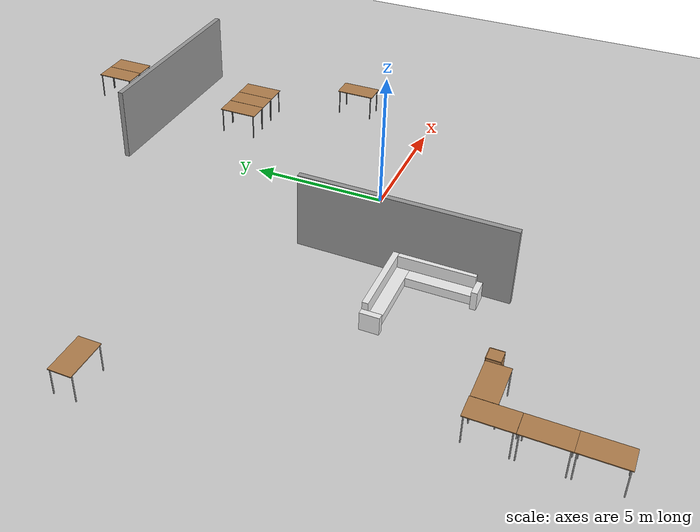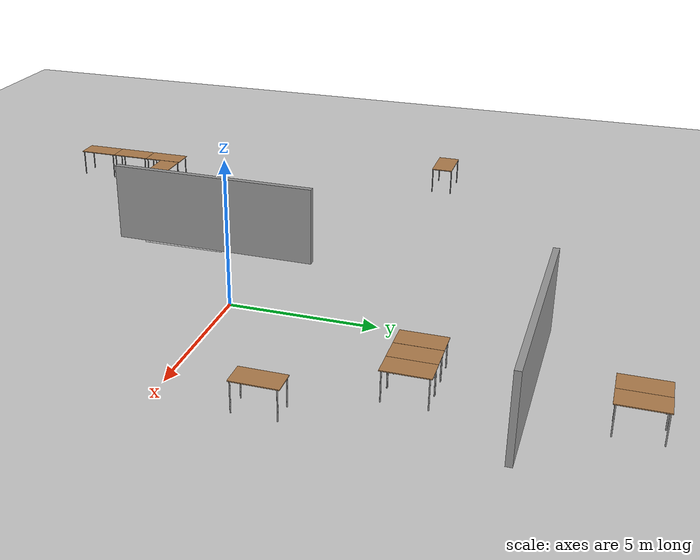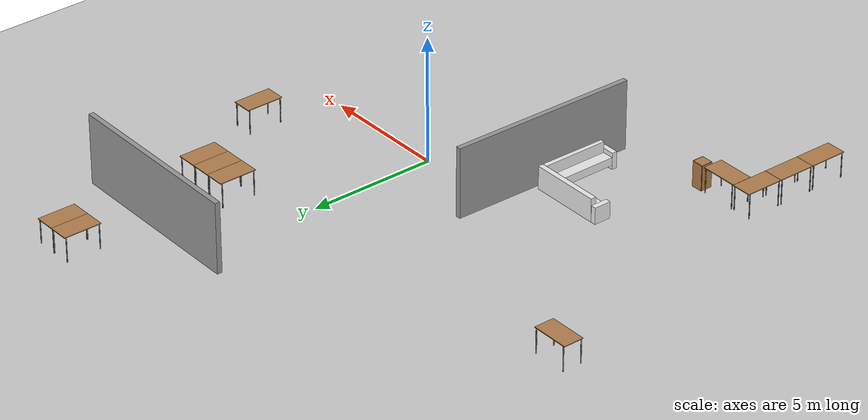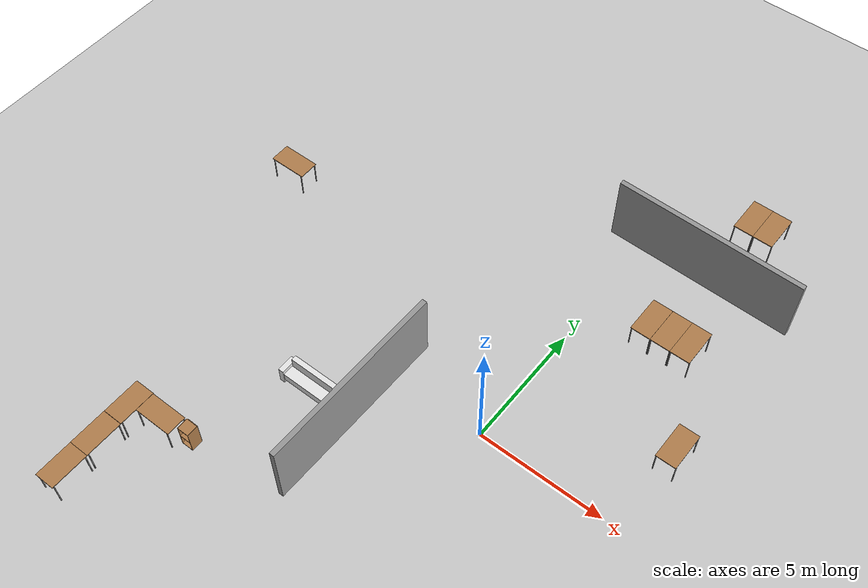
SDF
<sdf version="1.6">
 <world name="default">
  <light name="sun" type="directional">
   <pose>0 0 10 0 -0 0</pose>
   <diffuse>0.8 0.8 0.8 1</diffuse>
   <specular>0.2 0.2 0.2 1</specular>
   <attenuation>
    <range>1000</range>
    <constant>0.9</constant>
    <linear>0.01</linear>
    <quadratic>0.001</quadratic>
   </attenuation>
   <direction>-0.5 0.1 -0.9</direction>
  </light>
  <model name="ground_plane">
   <static>1</static>
   <link name="link">
    <collision name="collision">
     <geometry><plane><normal>0 0 1</normal><size>100 100</size></plane></geometry>
     <surface>
      <contact><collide_bitmask>65535</collide_bitmask></contact>
      <friction><ode><mu>100</mu><mu2>50</mu2></ode></friction>
     </surface>
    </collision>
    <visual name="visual">
     <cast_shadows>0</cast_shadows>
     <geometry><plane><normal>0 0 1</normal><size>100 100</size></plane></geometry>
     <material>
      <script><uri>file://media/materials/scripts/gazebo.material</uri><name>Gazebo/Grey</name></script>
     </material>
    </visual>
   </link>
  </model>
  <gravity>0 0 -9.8</gravity>
  <magnetic_field>6e-06 2.3e-05 -4.2e-05</magnetic_field>
  <atmosphere type="adiabatic"/>
  <physics name="default_physics" default="0" type="ode">
   <max_step_size>0.001</max_step_size>
   <real_time_factor>1</real_time_factor>
   <real_time_update_rate>1000</real_time_update_rate>
  </physics>
  <scene><ambient>0.4 0.4 0.4 1</ambient><background>0.7 0.7 0.7 1</background><shadows>1</shadows></scene>
  <audio><device>default</device></audio>
  <spherical_coordinates>
   <surface_model>EARTH_WGS84</surface_model>
   <latitude_deg>0</latitude_deg>
   <longitude_deg>0</longitude_deg>
   <elevation>0</elevation>
   <heading_deg>0</heading_deg>
  </spherical_coordinates>
  <model name="grey_wall">
   <static>1</static>
   <link name="link">
    <pose>0 0 1.4 0 -0 0</pose>
    <collision name="collision"><geometry><box><size>7.5 0.2 2.8</size></box></geometry></collision>
    <visual name="visual">
     <cast_shadows>0</cast_shadows>
     <geometry><box><size>7.5 0.2 2.8</size></box></geometry>
     <material>
      <script>
       <uri>model://grey_wall/materials/scripts</uri>
       <uri>model://grey_wall/materials/textures</uri>
       <name>vrc/grey_wall</name>
      </script>
     </material>
    </visual>
   </link>
   <pose>-3.71294 -2.12514 0.10462 0 -0 1.55928</pose>
  </model>
  <model name="table">
   <static>1</static>
   <link name="link">
    <collision name="surface">
     <pose>0 0 1 0 -0 0</pose>
     <geometry><box><size>1.5 0.8 0.03</size></box></geometry>
     <surface><friction><ode><mu>0.6</mu><mu2>0.6</mu2></ode></friction></surface>
    </collision>
    <visual name="visual1">
     <pose>0 0 1 0 -0 0</pose>
     <geometry><box><size>1.5 0.8 0.03</size></box></geometry>
     <material>
      <script><uri>file://media/materials/scripts/gazebo.material</uri><name>Gazebo/Wood</name></script>
     </material>
    </visual>
    <collision name="front_left_leg">
     <pose>0.68 0.38 0.5 0 -0 0</pose>
     <geometry><cylinder><radius>0.02</radius><length>1</length></cylinder></geometry>
    </collision>
    <visual name="front_left_leg">
     <pose>0.68 0.38 0.5 0 -0 0</pose>
     <geometry><cylinder><radius>0.02</radius><length>1</length></cylinder></geometry>
     <material>
      <script><uri>file://media/materials/scripts/gazebo.material</uri><name>Gazebo/Grey</name></script>
     </material>
    </visual>
    <collision name="front_right_leg">
     <pose>0.68 -0.38 0.5 0 -0 0</pose>
     <geometry><cylinder><radius>0.02</radius><length>1</length></cylinder></geometry>
    </collision>
    <visual name="front_right_leg">
     <pose>0.68 -0.38 0.5 0 -0 0</pose>
     <geometry><cylinder><radius>0.02</radius><length>1</length></cylinder></geometry>
     <material>
      <script><uri>file://media/materials/scripts/gazebo.material</uri><name>Gazebo/Grey</name></script>
     </material>
    </visual>
    <collision name="back_right_leg">
     <pose>-0.68 -0.38 0.5 0 -0 0</pose>
     <geometry><cylinder><radius>0.02</radius><length>1</length></cylinder></geometry>
    </collision>
    <visual name="back_right_leg">
     <pose>-0.68 -0.38 0.5 0 -0 0</pose>
     <geometry><cylinder><radius>0.02</radius><length>1</length></cylinder></geometry>
     <material>
      <script><uri>file://media/materials/scripts/gazebo.material</uri><name>Gazebo/Grey</name></script>
     </material>
    </visual>
    <collision name="back_left_leg">
     <pose>-0.68 0.38 0.5 0 -0 0</pose>
     <geometry><cylinder><radius>0.02</radius><length>1</length></cylinder></geometry>
    </collision>
    <visual name="back_left_leg">
     <pose>-0.68 0.38 0.5 0 -0 0</pose>
     <geometry><cylinder><radius>0.02</radius><length>1</length></cylinder></geometry>
     <material>
      <script><uri>file://media/materials/scripts/gazebo.material</uri><name>Gazebo/Grey</name></script>
     </material>
    </visual>
   </link>
   <pose>5.68585 3.1866 0.117018 0 -0 1.5708</pose>
  </model>
  <model name="table_clone">
   <static>1</static>
   <link name="link">
    <collision name="surface">
     <pose>0 0 1 0 -0 0</pose>
     <geometry><box><size>1.5 0.8 0.03</size></box></geometry>
     <surface><friction><ode><mu>0.6</mu><mu2>0.6</mu2></ode></friction></surface>
    </collision>
    <visual name="visual1">
     <pose>0 0 1 0 -0 0</pose>
     <geometry><box><size>1.5 0.8 0.03</size></box></geometry>
     <material>
      <script><uri>file://media/materials/scripts/gazebo.material</uri><name>Gazebo/Wood</name></script>
     </material>
    </visual>
    <collision name="front_left_leg">
     <pose>0.68 0.38 0.5 0 -0 0</pose>
     <geometry><cylinder><radius>0.02</radius><length>1</length></cylinder></geometry>
    </collision>
    <visual name="front_left_leg">
     <pose>0.68 0.38 0.5 0 -0 0</pose>
     <geometry><cylinder><radius>0.02</radius><length>1</length></cylinder></geometry>
     <material>
      <script><uri>file://media/materials/scripts/gazebo.material</uri><name>Gazebo/Grey</name></script>
     </material>
    </visual>
    <collision name="front_right_leg">
     <pose>0.68 -0.38 0.5 0 -0 0</pose>
     <geometry><cylinder><radius>0.02</radius><length>1</length></cylinder></geometry>
    </collision>
    <visual name="front_right_leg">
     <pose>0.68 -0.38 0.5 0 -0 0</pose>
     <geometry><cylinder><radius>0.02</radius><length>1</length></cylinder></geometry>
     <material>
      <script><uri>file://media/materials/scripts/gazebo.material</uri><name>Gazebo/Grey</name></script>
     </material>
    </visual>
    <collision name="back_right_leg">
     <pose>-0.68 -0.38 0.5 0 -0 0</pose>
     <geometry><cylinder><radius>0.02</radius><length>1</length></cylinder></geometry>
    </collision>
    <visual name="back_right_leg">
     <pose>-0.68 -0.38 0.5 0 -0 0</pose>
     <geometry><cylinder><radius>0.02</radius><length>1</length></cylinder></geometry>
     <material>
      <script><uri>file://media/materials/scripts/gazebo.material</uri><name>Gazebo/Grey</name></script>
     </material>
    </visual>
    <collision name="back_left_leg">
     <pose>-0.68 0.38 0.5 0 -0 0</pose>
     <geometry><cylinder><radius>0.02</radius><length>1</length></cylinder></geometry>
    </collision>
    <visual name="back_left_leg">
     <pose>-0.68 0.38 0.5 0 -0 0</pose>
     <geometry><cylinder><radius>0.02</radius><length>1</length></cylinder></geometry>
     <material>
      <script><uri>file://media/materials/scripts/gazebo.material</uri><name>Gazebo/Grey</name></script>
     </material>
    </visual>
   </link>
   <pose>-12.465 4.56471 0.117018 0 -0 4e-06</pose>
  </model>
  <model name="grey_wall_clone">
   <static>1</static>
   <link name="link">
    <pose>0 0 1.4 0 -0 0</pose>
    <collision name="collision"><geometry><box><size>7.5 0.2 2.8</size></box></geometry></collision>
    <visual name="visual">
     <cast_shadows>0</cast_shadows>
     <geometry><box><size>7.5 0.2 2.8</size></box></geometry>
     <material>
      <script>
       <uri>model://grey_wall/materials/scripts</uri>
       <uri>model://grey_wall/materials/textures</uri>
       <name>vrc/grey_wall</name>
      </script>
     </material>
    </visual>
   </link>
   <pose>2.38872 10.0718 0.10462 0 -0 3.13008</pose>
  </model>
  <model name="table_clone_0">
   <static>1</static>
   <link name="link">
    <collision name="surface">
     <pose>0 0 1 0 -0 0</pose>
     <geometry><box><size>1.5 0.8 0.03</size></box></geometry>
     <surface><friction><ode><mu>0.6</mu><mu2>0.6</mu2></ode></friction></surface>
    </collision>
    <visual name="visual1">
     <pose>0 0 1 0 -0 0</pose>
     <geometry><box><size>1.5 0.8 0.03</size></box></geometry>
     <material>
      <script><uri>file://media/materials/scripts/gazebo.material</uri><name>Gazebo/Wood</name></script>
     </material>
    </visual>
    <collision name="front_left_leg">
     <pose>0.68 0.38 0.5 0 -0 0</pose>
     <geometry><cylinder><radius>0.02</radius><length>1</length></cylinder></geometry>
    </collision>
    <visual name="front_left_leg">
     <pose>0.68 0.38 0.5 0 -0 0</pose>
     <geometry><cylinder><radius>0.02</radius><length>1</length></cylinder></geometry>
     <material>
      <script><uri>file://media/materials/scripts/gazebo.material</uri><name>Gazebo/Grey</name></script>
     </material>
    </visual>
    <collision name="front_right_leg">
     <pose>0.68 -0.38 0.5 0 -0 0</pose>
     <geometry><cylinder><radius>0.02</radius><length>1</length></cylinder></geometry>
    </collision>
    <visual name="front_right_leg">
     <pose>0.68 -0.38 0.5 0 -0 0</pose>
     <geometry><cylinder><radius>0.02</radius><length>1</length></cylinder></geometry>
     <material>
      <script><uri>file://media/materials/scripts/gazebo.material</uri><name>Gazebo/Grey</name></script>
     </material>
    </visual>
    <collision name="back_right_leg">
     <pose>-0.68 -0.38 0.5 0 -0 0</pose>
     <geometry><cylinder><radius>0.02</radius><length>1</length></cylinder></geometry>
    </collision>
    <visual name="back_right_leg">
     <pose>-0.68 -0.38 0.5 0 -0 0</pose>
     <geometry><cylinder><radius>0.02</radius><length>1</length></cylinder></geometry>
     <material>
      <script><uri>file://media/materials/scripts/gazebo.material</uri><name>Gazebo/Grey</name></script>
     </material>
    </visual>
    <collision name="back_left_leg">
     <pose>-0.68 0.38 0.5 0 -0 0</pose>
     <geometry><cylinder><radius>0.02</radius><length>1</length></cylinder></geometry>
    </collision>
    <visual name="back_left_leg">
     <pose>-0.68 0.38 0.5 0 -0 0</pose>
     <geometry><cylinder><radius>0.02</radius><length>1</length></cylinder></geometry>
     <material>
      <script><uri>file://media/materials/scripts/gazebo.material</uri><name>Gazebo/Grey</name></script>
     </material>
    </visual>
   </link>
   <pose>3.89693 6.89593 0.117018 0 -0 1.5708</pose>
  </model>
  <model name="table_clone_0_clone">
   <static>1</static>
   <link name="link">
    <collision name="surface">
     <pose>0 0 1 0 -0 0</pose>
     <geometry><box><size>1.5 0.8 0.03</size></box></geometry>
     <surface><friction><ode><mu>0.6</mu><mu2>0.6</mu2></ode></friction></surface>
    </collision>
    <visual name="visual1">
     <pose>0 0 1 0 -0 0</pose>
     <geometry><box><size>1.5 0.8 0.03</size></box></geometry>
     <material>
      <script><uri>file://media/materials/scripts/gazebo.material</uri><name>Gazebo/Wood</name></script>
     </material>
    </visual>
    <collision name="front_left_leg">
     <pose>0.68 0.38 0.5 0 -0 0</pose>
     <geometry><cylinder><radius>0.02</radius><length>1</length></cylinder></geometry>
    </collision>
    <visual name="front_left_leg">
     <pose>0.68 0.38 0.5 0 -0 0</pose>
     <geometry><cylinder><radius>0.02</radius><length>1</length></cylinder></geometry>
     <material>
      <script><uri>file://media/materials/scripts/gazebo.material</uri><name>Gazebo/Grey</name></script>
     </material>
    </visual>
    <collision name="front_right_leg">
     <pose>0.68 -0.38 0.5 0 -0 0</pose>
     <geometry><cylinder><radius>0.02</radius><length>1</length></cylinder></geometry>
    </collision>
    <visual name="front_right_leg">
     <pose>0.68 -0.38 0.5 0 -0 0</pose>
     <geometry><cylinder><radius>0.02</radius><length>1</length></cylinder></geometry>
     <material>
      <script><uri>file://media/materials/scripts/gazebo.material</uri><name>Gazebo/Grey</name></script>
     </material>
    </visual>
    <collision name="back_right_leg">
     <pose>-0.68 -0.38 0.5 0 -0 0</pose>
     <geometry><cylinder><radius>0.02</radius><length>1</length></cylinder></geometry>
    </collision>
    <visual name="back_right_leg">
     <pose>-0.68 -0.38 0.5 0 -0 0</pose>
     <geometry><cylinder><radius>0.02</radius><length>1</length></cylinder></geometry>
     <material>
      <script><uri>file://media/materials/scripts/gazebo.material</uri><name>Gazebo/Grey</name></script>
     </material>
    </visual>
    <collision name="back_left_leg">
     <pose>-0.68 0.38 0.5 0 -0 0</pose>
     <geometry><cylinder><radius>0.02</radius><length>1</length></cylinder></geometry>
    </collision>
    <visual name="back_left_leg">
     <pose>-0.68 0.38 0.5 0 -0 0</pose>
     <geometry><cylinder><radius>0.02</radius><length>1</length></cylinder></geometry>
     <material>
      <script><uri>file://media/materials/scripts/gazebo.material</uri><name>Gazebo/Grey</name></script>
     </material>
    </visual>
   </link>
   <pose>3.09743 6.89352 0.117018 0 -0 1.5708</pose>
  </model>
  <model name="table_clone_0_clone_0">
   <static>1</static>
   <link name="link">
    <collision name="surface">
     <pose>0 0 1 0 -0 0</pose>
     <geometry><box><size>1.5 0.8 0.03</size></box></geometry>
     <surface><friction><ode><mu>0.6</mu><mu2>0.6</mu2></ode></friction></surface>
    </collision>
    <visual name="visual1">
     <pose>0 0 1 0 -0 0</pose>
     <geometry><box><size>1.5 0.8 0.03</size></box></geometry>
     <material>
      <script><uri>file://media/materials/scripts/gazebo.material</uri><name>Gazebo/Wood</name></script>
     </material>
    </visual>
    <collision name="front_left_leg">
     <pose>0.68 0.38 0.5 0 -0 0</pose>
     <geometry><cylinder><radius>0.02</radius><length>1</length></cylinder></geometry>
    </collision>
    <visual name="front_left_leg">
     <pose>0.68 0.38 0.5 0 -0 0</pose>
     <geometry><cylinder><radius>0.02</radius><length>1</length></cylinder></geometry>
     <material>
      <script><uri>file://media/materials/scripts/gazebo.material</uri><name>Gazebo/Grey</name></script>
     </material>
    </visual>
    <collision name="front_right_leg">
     <pose>0.68 -0.38 0.5 0 -0 0</pose>
     <geometry><cylinder><radius>0.02</radius><length>1</length></cylinder></geometry>
    </collision>
    <visual name="front_right_leg">
     <pose>0.68 -0.38 0.5 0 -0 0</pose>
     <geometry><cylinder><radius>0.02</radius><length>1</length></cylinder></geometry>
     <material>
      <script><uri>file://media/materials/scripts/gazebo.material</uri><name>Gazebo/Grey</name></script>
     </material>
    </visual>
    <collision name="back_right_leg">
     <pose>-0.68 -0.38 0.5 0 -0 0</pose>
     <geometry><cylinder><radius>0.02</radius><length>1</length></cylinder></geometry>
    </collision>
    <visual name="back_right_leg">
     <pose>-0.68 -0.38 0.5 0 -0 0</pose>
     <geometry><cylinder><radius>0.02</radius><length>1</length></cylinder></geometry>
     <material>
      <script><uri>file://media/materials/scripts/gazebo.material</uri><name>Gazebo/Grey</name></script>
     </material>
    </visual>
    <collision name="back_left_leg">
     <pose>-0.68 0.38 0.5 0 -0 0</pose>
     <geometry><cylinder><radius>0.02</radius><length>1</length></cylinder></geometry>
    </collision>
    <visual name="back_left_leg">
     <pose>-0.68 0.38 0.5 0 -0 0</pose>
     <geometry><cylinder><radius>0.02</radius><length>1</length></cylinder></geometry>
     <material>
      <script><uri>file://media/materials/scripts/gazebo.material</uri><name>Gazebo/Grey</name></script>
     </material>
    </visual>
   </link>
   <pose>2.29555 6.89208 0.117018 0 -0 1.5708</pose>
  </model>
  <model name="table_0">
   <static>1</static>
   <link name="link">
    <collision name="surface">
     <pose>0 0 1 0 -0 0</pose>
     <geometry><box><size>1.5 0.8 0.03</size></box></geometry>
     <surface><friction><ode><mu>0.6</mu><mu2>0.6</mu2></ode></friction></surface>
    </collision>
    <visual name="visual1">
     <pose>0 0 1 0 -0 0</pose>
     <geometry><box><size>1.5 0.8 0.03</size></box></geometry>
     <material>
      <script><uri>file://media/materials/scripts/gazebo.material</uri><name>Gazebo/Wood</name></script>
     </material>
    </visual>
    <collision name="front_left_leg">
     <pose>0.68 0.38 0.5 0 -0 0</pose>
     <geometry><cylinder><radius>0.02</radius><length>1</length></cylinder></geometry>
    </collision>
    <visual name="front_left_leg">
     <pose>0.68 0.38 0.5 0 -0 0</pose>
     <geometry><cylinder><radius>0.02</radius><length>1</length></cylinder></geometry>
     <material>
      <script><uri>file://media/materials/scripts/gazebo.material</uri><name>Gazebo/Grey</name></script>
     </material>
    </visual>
    <collision name="front_right_leg">
     <pose>0.68 -0.38 0.5 0 -0 0</pose>
     <geometry><cylinder><radius>0.02</radius><length>1</length></cylinder></geometry>
    </collision>
    <visual name="front_right_leg">
     <pose>0.68 -0.38 0.5 0 -0 0</pose>
     <geometry><cylinder><radius>0.02</radius><length>1</length></cylinder></geometry>
     <material>
      <script><uri>file://media/materials/scripts/gazebo.material</uri><name>Gazebo/Grey</name></script>
     </material>
    </visual>
    <collision name="back_right_leg">
     <pose>-0.68 -0.38 0.5 0 -0 0</pose>
     <geometry><cylinder><radius>0.02</radius><length>1</length></cylinder></geometry>
    </collision>
    <visual name="back_right_leg">
     <pose>-0.68 -0.38 0.5 0 -0 0</pose>
     <geometry><cylinder><radius>0.02</radius><length>1</length></cylinder></geometry>
     <material>
      <script><uri>file://media/materials/scripts/gazebo.material</uri><name>Gazebo/Grey</name></script>
     </material>
    </visual>
    <collision name="back_left_leg">
     <pose>-0.68 0.38 0.5 0 -0 0</pose>
     <geometry><cylinder><radius>0.02</radius><length>1</length></cylinder></geometry>
    </collision>
    <visual name="back_left_leg">
     <pose>-0.68 0.38 0.5 0 -0 0</pose>
     <geometry><cylinder><radius>0.02</radius><length>1</length></cylinder></geometry>
     <material>
      <script><uri>file://media/materials/scripts/gazebo.material</uri><name>Gazebo/Grey</name></script>
     </material>
    </visual>
   </link>
   <pose>-9.66369 -6.79896 0.093809 0 -0 1.5708</pose>
  </model>
  <model name="table_0_clone">
   <static>1</static>
   <link name="link">
    <collision name="surface">
     <pose>0 0 1 0 -0 0</pose>
     <geometry><box><size>1.5 0.8 0.03</size></box></geometry>
     <surface><friction><ode><mu>0.6</mu><mu2>0.6</mu2></ode></friction></surface>
    </collision>
    <visual name="visual1">
     <pose>0 0 1 0 -0 0</pose>
     <geometry><box><size>1.5 0.8 0.03</size></box></geometry>
     <material>
      <script><uri>file://media/materials/scripts/gazebo.material</uri><name>Gazebo/Wood</name></script>
     </material>
    </visual>
    <collision name="front_left_leg">
     <pose>0.68 0.38 0.5 0 -0 0</pose>
     <geometry><cylinder><radius>0.02</radius><length>1</length></cylinder></geometry>
    </collision>
    <visual name="front_left_leg">
     <pose>0.68 0.38 0.5 0 -0 0</pose>
     <geometry><cylinder><radius>0.02</radius><length>1</length></cylinder></geometry>
     <material>
      <script><uri>file://media/materials/scripts/gazebo.material</uri><name>Gazebo/Grey</name></script>
     </material>
    </visual>
    <collision name="front_right_leg">
     <pose>0.68 -0.38 0.5 0 -0 0</pose>
     <geometry><cylinder><radius>0.02</radius><length>1</length></cylinder></geometry>
    </collision>
    <visual name="front_right_leg">
     <pose>0.68 -0.38 0.5 0 -0 0</pose>
     <geometry><cylinder><radius>0.02</radius><length>1</length></cylinder></geometry>
     <material>
      <script><uri>file://media/materials/scripts/gazebo.material</uri><name>Gazebo/Grey</name></script>
     </material>
    </visual>
    <collision name="back_right_leg">
     <pose>-0.68 -0.38 0.5 0 -0 0</pose>
     <geometry><cylinder><radius>0.02</radius><length>1</length></cylinder></geometry>
    </collision>
    <visual name="back_right_leg">
     <pose>-0.68 -0.38 0.5 0 -0 0</pose>
     <geometry><cylinder><radius>0.02</radius><length>1</length></cylinder></geometry>
     <material>
      <script><uri>file://media/materials/scripts/gazebo.material</uri><name>Gazebo/Grey</name></script>
     </material>
    </visual>
    <collision name="back_left_leg">
     <pose>-0.68 0.38 0.5 0 -0 0</pose>
     <geometry><cylinder><radius>0.02</radius><length>1</length></cylinder></geometry>
    </collision>
    <visual name="back_left_leg">
     <pose>-0.68 0.38 0.5 0 -0 0</pose>
     <geometry><cylinder><radius>0.02</radius><length>1</length></cylinder></geometry>
     <material>
      <script><uri>file://media/materials/scripts/gazebo.material</uri><name>Gazebo/Grey</name></script>
     </material>
    </visual>
   </link>
   <pose>-9.66321 -8.30398 0.093809 0 -0 1.5708</pose>
  </model>
  <model name="table_0_clone_0">
   <static>1</static>
   <link name="link">
    <collision name="surface">
     <pose>0 0 1 0 -0 0</pose>
     <geometry><box><size>1.5 0.8 0.03</size></box></geometry>
     <surface><friction><ode><mu>0.6</mu><mu2>0.6</mu2></ode></friction></surface>
    </collision>
    <visual name="visual1">
     <pose>0 0 1 0 -0 0</pose>
     <geometry><box><size>1.5 0.8 0.03</size></box></geometry>
     <material>
      <script><uri>file://media/materials/scripts/gazebo.material</uri><name>Gazebo/Wood</name></script>
     </material>
    </visual>
    <collision name="front_left_leg">
     <pose>0.68 0.38 0.5 0 -0 0</pose>
     <geometry><cylinder><radius>0.02</radius><length>1</length></cylinder></geometry>
    </collision>
    <visual name="front_left_leg">
     <pose>0.68 0.38 0.5 0 -0 0</pose>
     <geometry><cylinder><radius>0.02</radius><length>1</length></cylinder></geometry>
     <material>
      <script><uri>file://media/materials/scripts/gazebo.material</uri><name>Gazebo/Grey</name></script>
     </material>
    </visual>
    <collision name="front_right_leg">
     <pose>0.68 -0.38 0.5 0 -0 0</pose>
     <geometry><cylinder><radius>0.02</radius><length>1</length></cylinder></geometry>
    </collision>
    <visual name="front_right_leg">
     <pose>0.68 -0.38 0.5 0 -0 0</pose>
     <geometry><cylinder><radius>0.02</radius><length>1</length></cylinder></geometry>
     <material>
      <script><uri>file://media/materials/scripts/gazebo.material</uri><name>Gazebo/Grey</name></script>
     </material>
    </visual>
    <collision name="back_right_leg">
     <pose>-0.68 -0.38 0.5 0 -0 0</pose>
     <geometry><cylinder><radius>0.02</radius><length>1</length></cylinder></geometry>
    </collision>
    <visual name="back_right_leg">
     <pose>-0.68 -0.38 0.5 0 -0 0</pose>
     <geometry><cylinder><radius>0.02</radius><length>1</length></cylinder></geometry>
     <material>
      <script><uri>file://media/materials/scripts/gazebo.material</uri><name>Gazebo/Grey</name></script>
     </material>
    </visual>
    <collision name="back_left_leg">
     <pose>-0.68 0.38 0.5 0 -0 0</pose>
     <geometry><cylinder><radius>0.02</radius><length>1</length></cylinder></geometry>
    </collision>
    <visual name="back_left_leg">
     <pose>-0.68 0.38 0.5 0 -0 0</pose>
     <geometry><cylinder><radius>0.02</radius><length>1</length></cylinder></geometry>
     <material>
      <script><uri>file://media/materials/scripts/gazebo.material</uri><name>Gazebo/Grey</name></script>
     </material>
    </visual>
   </link>
   <pose>-9.65999 -9.8041 0.093809 0 -0 1.5708</pose>
  </model>
  <model name="table_0_clone_1">
   <static>1</static>
   <link name="link">
    <collision name="surface">
     <pose>0 0 1 0 -0 0</pose>
     <geometry><box><size>1.5 0.8 0.03</size></box></geometry>
     <surface><friction><ode><mu>0.6</mu><mu2>0.6</mu2></ode></friction></surface>
    </collision>
    <visual name="visual1">
     <pose>0 0 1 0 -0 0</pose>
     <geometry><box><size>1.5 0.8 0.03</size></box></geometry>
     <material>
      <script><uri>file://media/materials/scripts/gazebo.material</uri><name>Gazebo/Wood</name></script>
     </material>
    </visual>
    <collision name="front_left_leg">
     <pose>0.68 0.38 0.5 0 -0 0</pose>
     <geometry><cylinder><radius>0.02</radius><length>1</length></cylinder></geometry>
    </collision>
    <visual name="front_left_leg">
     <pose>0.68 0.38 0.5 0 -0 0</pose>
     <geometry><cylinder><radius>0.02</radius><length>1</length></cylinder></geometry>
     <material>
      <script><uri>file://media/materials/scripts/gazebo.material</uri><name>Gazebo/Grey</name></script>
     </material>
    </visual>
    <collision name="front_right_leg">
     <pose>0.68 -0.38 0.5 0 -0 0</pose>
     <geometry><cylinder><radius>0.02</radius><length>1</length></cylinder></geometry>
    </collision>
    <visual name="front_right_leg">
     <pose>0.68 -0.38 0.5 0 -0 0</pose>
     <geometry><cylinder><radius>0.02</radius><length>1</length></cylinder></geometry>
     <material>
      <script><uri>file://media/materials/scripts/gazebo.material</uri><name>Gazebo/Grey</name></script>
     </material>
    </visual>
    <collision name="back_right_leg">
     <pose>-0.68 -0.38 0.5 0 -0 0</pose>
     <geometry><cylinder><radius>0.02</radius><length>1</length></cylinder></geometry>
    </collision>
    <visual name="back_right_leg">
     <pose>-0.68 -0.38 0.5 0 -0 0</pose>
     <geometry><cylinder><radius>0.02</radius><length>1</length></cylinder></geometry>
     <material>
      <script><uri>file://media/materials/scripts/gazebo.material</uri><name>Gazebo/Grey</name></script>
     </material>
    </visual>
    <collision name="back_left_leg">
     <pose>-0.68 0.38 0.5 0 -0 0</pose>
     <geometry><cylinder><radius>0.02</radius><length>1</length></cylinder></geometry>
    </collision>
    <visual name="back_left_leg">
     <pose>-0.68 0.38 0.5 0 -0 0</pose>
     <geometry><cylinder><radius>0.02</radius><length>1</length></cylinder></geometry>
     <material>
      <script><uri>file://media/materials/scripts/gazebo.material</uri><name>Gazebo/Grey</name></script>
     </material>
    </visual>
   </link>
   <pose>-8.50616 -6.46449 0.093809 0 0 -3.14159</pose>
  </model>
  <model name="cabinet">
   <static>1</static>
   <link name="cabinet_bottom_plate">
    <inertial>
     <pose>0 0 -1 0 -0 0</pose>
     <inertia><ixx>2.05</ixx><ixy>0</ixy><ixz>0</ixz><iyy>2.05</iyy><iyz>0</iyz><izz>2.05</izz></inertia>
     <mass>25</mass>
    </inertial>
    <collision name="cabinet_bottom_plate_geom">
     <pose>0 0 0.01 0 -0 0</pose>
     <geometry><box><size>0.45 0.45 0.02</size></box></geometry>
    </collision>
    <visual name="cabinet_bottom_plate_geom_visual">
     <pose>0 0 0.01 0 -0 0</pose>
     <geometry><box><size>0.45 0.45 0.02</size></box></geometry>
     <material>
      <script><uri>file://media/materials/scripts/gazebo.material</uri><name>Gazebo/Wood</name></script>
     </material>
    </visual>
    <collision name="cabinet_bottom_plate_geom_cabinet_back_plate">
     <pose>0.235 0 0.51 0 -0 0</pose>
     <geometry><box><size>0.02 0.45 1.02</size></box></geometry>
    </collision>
    <visual name="cabinet_bottom_plate_geom_cabinet_back_plate_visual">
     <pose>0.235 0 0.51 0 -0 0</pose>
     <geometry><box><size>0.02 0.45 1.02</size></box></geometry>
     <material>
      <script><uri>file://media/materials/scripts/gazebo.material</uri><name>Gazebo/Wood</name></script>
     </material>
    </visual>
    <collision name="cabinet_bottom_plate_geom_cabinet_left_plate">
     <pose>0 0.235 0.51 0 -0 0</pose>
     <geometry><box><size>0.45 0.02 1.02</size></box></geometry>
    </collision>
    <visual name="cabinet_bottom_plate_geom_cabinet_left_plate_visual">
     <pose>0 0.235 0.51 0 -0 0</pose>
     <geometry><box><size>0.45 0.02 1.02</size></box></geometry>
     <material>
      <script><uri>file://media/materials/scripts/gazebo.material</uri><name>Gazebo/Wood</name></script>
     </material>
    </visual>
    <collision name="cabinet_bottom_plate_geom_cabinet_middle_plate">
     <pose>0 0 0.51 0 -0 0</pose>
     <geometry><box><size>0.45 0.45 0.02</size></box></geometry>
    </collision>
    <visual name="cabinet_bottom_plate_geom_cabinet_middle_plate_visual">
     <pose>0 0 0.51 0 -0 0</pose>
     <geometry><box><size>0.45 0.45 0.02</size></box></geometry>
     <material>
      <script><uri>file://media/materials/scripts/gazebo.material</uri><name>Gazebo/Wood</name></script>
     </material>
    </visual>
    <collision name="cabinet_bottom_plate_geom_cabinet_right_plate">
     <pose>0 -0.235 0.51 0 -0 0</pose>
     <geometry><box><size>0.45 0.02 1.02</size></box></geometry>
    </collision>
    <visual name="cabinet_bottom_plate_geom_cabinet_right_plate_visual">
     <pose>0 -0.235 0.51 0 -0 0</pose>
     <geometry><box><size>0.45 0.02 1.02</size></box></geometry>
     <material>
      <script><uri>file://media/materials/scripts/gazebo.material</uri><name>Gazebo/Wood</name></script>
     </material>
    </visual>
    <collision name="cabinet_bottom_plate_geom_cabinet_top_plate">
     <pose>0 0 1.01 0 -0 0</pose>
     <geometry><box><size>0.45 0.45 0.02</size></box></geometry>
    </collision>
    <visual name="cabinet_bottom_plate_geom_cabinet_top_plate_visual">
     <pose>0 0 1.01 0 -0 0</pose>
     <geometry><box><size>0.45 0.45 0.02</size></box></geometry>
     <material>
      <script><uri>file://media/materials/scripts/gazebo.material</uri><name>Gazebo/Wood</name></script>
     </material>
    </visual>
   </link>
   <pose>-7.43263 -6.2811 0.101663 0 -0 1.5708</pose>
  </model>
  <model name="table_clone_0_clone_1">
   <static>1</static>
   <link name="link">
    <collision name="surface">
     <pose>0 0 1 0 -0 0</pose>
     <geometry><box><size>1.5 0.8 0.03</size></box></geometry>
     <surface><friction><ode><mu>0.6</mu><mu2>0.6</mu2></ode></friction></surface>
    </collision>
    <visual name="visual1">
     <pose>0 0 1 0 -0 0</pose>
     <geometry><box><size>1.5 0.8 0.03</size></box></geometry>
     <material>
      <script><uri>file://media/materials/scripts/gazebo.material</uri><name>Gazebo/Wood</name></script>
     </material>
    </visual>
    <collision name="front_left_leg">
     <pose>0.68 0.38 0.5 0 -0 0</pose>
     <geometry><cylinder><radius>0.02</radius><length>1</length></cylinder></geometry>
    </collision>
    <visual name="front_left_leg">
     <pose>0.68 0.38 0.5 0 -0 0</pose>
     <geometry><cylinder><radius>0.02</radius><length>1</length></cylinder></geometry>
     <material>
      <script><uri>file://media/materials/scripts/gazebo.material</uri><name>Gazebo/Grey</name></script>
     </material>
    </visual>
    <collision name="front_right_leg">
     <pose>0.68 -0.38 0.5 0 -0 0</pose>
     <geometry><cylinder><radius>0.02</radius><length>1</length></cylinder></geometry>
    </collision>
    <visual name="front_right_leg">
     <pose>0.68 -0.38 0.5 0 -0 0</pose>
     <geometry><cylinder><radius>0.02</radius><length>1</length></cylinder></geometry>
     <material>
      <script><uri>file://media/materials/scripts/gazebo.material</uri><name>Gazebo/Grey</name></script>
     </material>
    </visual>
    <collision name="back_right_leg">
     <pose>-0.68 -0.38 0.5 0 -0 0</pose>
     <geometry><cylinder><radius>0.02</radius><length>1</length></cylinder></geometry>
    </collision>
    <visual name="back_right_leg">
     <pose>-0.68 -0.38 0.5 0 -0 0</pose>
     <geometry><cylinder><radius>0.02</radius><length>1</length></cylinder></geometry>
     <material>
      <script><uri>file://media/materials/scripts/gazebo.material</uri><name>Gazebo/Grey</name></script>
     </material>
    </visual>
    <collision name="back_left_leg">
     <pose>-0.68 0.38 0.5 0 -0 0</pose>
     <geometry><cylinder><radius>0.02</radius><length>1</length></cylinder></geometry>
    </collision>
    <visual name="back_left_leg">
     <pose>-0.68 0.38 0.5 0 -0 0</pose>
     <geometry><cylinder><radius>0.02</radius><length>1</length></cylinder></geometry>
     <material>
      <script><uri>file://media/materials/scripts/gazebo.material</uri><name>Gazebo/Grey</name></script>
     </material>
    </visual>
   </link>
   <pose>3.60576 13.0475 0.117018 0 -0 1.5708</pose>
  </model>
  <model name="table_clone_0_clone_2">
   <static>1</static>
   <link name="link">
    <collision name="surface">
     <pose>0 0 1 0 -0 0</pose>
     <geometry><box><size>1.5 0.8 0.03</size></box></geometry>
     <surface><friction><ode><mu>0.6</mu><mu2>0.6</mu2></ode></friction></surface>
    </collision>
    <visual name="visual1">
     <pose>0 0 1 0 -0 0</pose>
     <geometry><box><size>1.5 0.8 0.03</size></box></geometry>
     <material>
      <script><uri>file://media/materials/scripts/gazebo.material</uri><name>Gazebo/Wood</name></script>
     </material>
    </visual>
    <collision name="front_left_leg">
     <pose>0.68 0.38 0.5 0 -0 0</pose>
     <geometry><cylinder><radius>0.02</radius><length>1</length></cylinder></geometry>
    </collision>
    <visual name="front_left_leg">
     <pose>0.68 0.38 0.5 0 -0 0</pose>
     <geometry><cylinder><radius>0.02</radius><length>1</length></cylinder></geometry>
     <material>
      <script><uri>file://media/materials/scripts/gazebo.material</uri><name>Gazebo/Grey</name></script>
     </material>
    </visual>
    <collision name="front_right_leg">
     <pose>0.68 -0.38 0.5 0 -0 0</pose>
     <geometry><cylinder><radius>0.02</radius><length>1</length></cylinder></geometry>
    </collision>
    <visual name="front_right_leg">
     <pose>0.68 -0.38 0.5 0 -0 0</pose>
     <geometry><cylinder><radius>0.02</radius><length>1</length></cylinder></geometry>
     <material>
      <script><uri>file://media/materials/scripts/gazebo.material</uri><name>Gazebo/Grey</name></script>
     </material>
    </visual>
    <collision name="back_right_leg">
     <pose>-0.68 -0.38 0.5 0 -0 0</pose>
     <geometry><cylinder><radius>0.02</radius><length>1</length></cylinder></geometry>
    </collision>
    <visual name="back_right_leg">
     <pose>-0.68 -0.38 0.5 0 -0 0</pose>
     <geometry><cylinder><radius>0.02</radius><length>1</length></cylinder></geometry>
     <material>
      <script><uri>file://media/materials/scripts/gazebo.material</uri><name>Gazebo/Grey</name></script>
     </material>
    </visual>
    <collision name="back_left_leg">
     <pose>-0.68 0.38 0.5 0 -0 0</pose>
     <geometry><cylinder><radius>0.02</radius><length>1</length></cylinder></geometry>
    </collision>
    <visual name="back_left_leg">
     <pose>-0.68 0.38 0.5 0 -0 0</pose>
     <geometry><cylinder><radius>0.02</radius><length>1</length></cylinder></geometry>
     <material>
      <script><uri>file://media/materials/scripts/gazebo.material</uri><name>Gazebo/Grey</name></script>
     </material>
    </visual>
   </link>
   <pose>2.80634 13.0487 0.117018 0 -0 1.5708</pose>
  </model>
  <model name="Sofa">
   <link name="link_0">
    <inertial>
     <mass>0.382123</mass>
     <inertia>
      <ixx>0.00968354</ixx>
      <ixy>0</ixy>
      <ixz>0</ixz>
      <iyy>0.225764</iyy>
      <iyz>0</iyz>
      <izz>0.228759</izz>
     </inertia>
    </inertial>
    <pose>-0.25228 0.450008 0 0 -0 0</pose>
    <visual name="visual">
     <geometry><box><size>2.64287 0.446181 0.324067</size></box></geometry>
     <material>
      <lighting>1</lighting>
      <script><uri>file://media/materials/scripts/gazebo.material</uri><name>Gazebo/White</name></script>
      <shader type="vertex"><normal_map>__default__</normal_map></shader>
      <ambient>1 1 1 1</ambient>
      <diffuse>1 1 1 1</diffuse>
      <specular>0 0 0 1</specular>
      <emissive>0 0 0 1</emissive>
     </material>
    </visual>
    <collision name="collision">
     <geometry><box><size>2.64287 0.446181 0.324067</size></box></geometry>
     <surface>
      <friction>
       <ode><mu>1</mu><mu2>1</mu2><fdir1>0 0 0</fdir1><slip1>0</slip1><slip2>0</slip2></ode>
       <torsional>
        <coefficient>1</coefficient>
        <patch_radius>0</patch_radius>
        <surface_radius>0</surface_radius>
        <use_patch_radius>1</use_patch_radius>
        <ode><slip>0</slip></ode>
       </torsional>
      </friction>
      <bounce><restitution_coefficient>0</restitution_coefficient><threshold>1e+06</threshold></bounce>
      <contact>
       <collide_without_contact>0</collide_without_contact>
       <collide_without_contact_bitmask>1</collide_without_contact_bitmask>
       <collide_bitmask>1</collide_bitmask>
       <ode>
        <soft_cfm>0</soft_cfm>
        <soft_erp>0.2</soft_erp>
        <kp>1e+13</kp>
        <kd>1</kd>
        <max_vel>0.01</max_vel>
        <min_depth>0</min_depth>
       </ode>
       <bullet>
        <split_impulse>1</split_impulse>
        <split_impulse_penetration_threshold>-0.01</split_impulse_penetration_threshold>
        <soft_cfm>0</soft_cfm>
        <soft_erp>0.2</soft_erp>
        <kp>1e+13</kp>
        <kd>1</kd>
       </bullet>
      </contact>
     </surface>
    </collision>
   </link>
   <link name="link_0_clone">
    <inertial>
     <mass>0.323082</mass>
     <inertia>
      <ixx>0.00818734</ixx>
      <ixy>0</ixy>
      <ixz>0</ixz>
      <iyy>0.137259</iyy>
      <iyz>0</iyz>
      <izz>0.139791</izz>
     </inertia>
    </inertial>
    <pose>0.848339 -0.864123 0 0 -0 1.5708</pose>
    <visual name="visual">
     <geometry><box><size>2.23452 0.446181 0.324067</size></box></geometry>
     <material>
      <lighting>1</lighting>
      <script><uri>file://media/materials/scripts/gazebo.material</uri><name>Gazebo/White</name></script>
      <shader type="vertex"><normal_map>__default__</normal_map></shader>
      <ambient>1 1 1 1</ambient>
      <diffuse>1 1 1 1</diffuse>
      <specular>0 0 0 1</specular>
      <emissive>0 0 0 1</emissive>
     </material>
    </visual>
    <collision name="collision">
     <geometry><box><size>2.23452 0.446181 0.324067</size></box></geometry>
     <surface>
      <friction>
       <ode><mu>1</mu><mu2>1</mu2><fdir1>0 0 0</fdir1><slip1>0</slip1><slip2>0</slip2></ode>
       <torsional>
        <coefficient>1</coefficient>
        <patch_radius>0</patch_radius>
        <surface_radius>0</surface_radius>
        <use_patch_radius>1</use_patch_radius>
        <ode><slip>0</slip></ode>
       </torsional>
      </friction>
      <bounce><restitution_coefficient>0</restitution_coefficient><threshold>1e+06</threshold></bounce>
      <contact>
       <collide_without_contact>0</collide_without_contact>
       <collide_without_contact_bitmask>1</collide_without_contact_bitmask>
       <collide_bitmask>1</collide_bitmask>
       <ode>
        <soft_cfm>0</soft_cfm>
        <soft_erp>0.2</soft_erp>
        <kp>1e+13</kp>
        <kd>1</kd>
        <max_vel>0.01</max_vel>
        <min_depth>0</min_depth>
       </ode>
       <bullet>
        <split_impulse>1</split_impulse>
        <split_impulse_penetration_threshold>-0.01</split_impulse_penetration_threshold>
        <soft_cfm>0</soft_cfm>
        <soft_erp>0.2</soft_erp>
        <kp>1e+13</kp>
        <kd>1</kd>
       </bullet>
      </contact>
     </surface>
    </collision>
   </link>
   <link name="link_0_clone_clone">
    <inertial>
     <mass>0.667196</mass>
     <inertia>
      <ixx>0.0832171</ixx>
      <ixy>0</ixy>
      <ixz>0</ixz>
      <iyy>0.469129</iyy>
      <iyz>0</iyz>
      <izz>0.390789</izz>
     </inertia>
    </inertial>
    <pose>1.18863 -0.659087 0 0 -0 1.5708</pose>
    <visual name="visual">
     <geometry><box><size>2.64287 0.209419 1.20535</size></box></geometry>
     <material>
      <lighting>1</lighting>
      <script><uri>file://media/materials/scripts/gazebo.material</uri><name>Gazebo/White</name></script>
      <shader type="vertex"><normal_map>__default__</normal_map></shader>
      <ambient>1 1 1 1</ambient>
      <diffuse>1 1 1 1</diffuse>
      <specular>0 0 0 1</specular>
      <emissive>0 0 0 1</emissive>
     </material>
    </visual>
    <collision name="collision">
     <geometry><box><size>2.64287 0.209419 1.20535</size></box></geometry>
     <surface>
      <friction>
       <ode><mu>1</mu><mu2>1</mu2><fdir1>0 0 0</fdir1><slip1>0</slip1><slip2>0</slip2></ode>
       <torsional>
        <coefficient>1</coefficient>
        <patch_radius>0</patch_radius>
        <surface_radius>0</surface_radius>
        <use_patch_radius>1</use_patch_radius>
        <ode><slip>0</slip></ode>
       </torsional>
      </friction>
      <bounce><restitution_coefficient>0</restitution_coefficient><threshold>1e+06</threshold></bounce>
      <contact>
       <collide_without_contact>0</collide_without_contact>
       <collide_without_contact_bitmask>1</collide_without_contact_bitmask>
       <collide_bitmask>1</collide_bitmask>
       <ode>
        <soft_cfm>0</soft_cfm>
        <soft_erp>0.2</soft_erp>
        <kp>1e+13</kp>
        <kd>1</kd>
        <max_vel>0.01</max_vel>
        <min_depth>0</min_depth>
       </ode>
       <bullet>
        <split_impulse>1</split_impulse>
        <split_impulse_penetration_threshold>-0.01</split_impulse_penetration_threshold>
        <soft_cfm>0</soft_cfm>
        <soft_erp>0.2</soft_erp>
        <kp>1e+13</kp>
        <kd>1</kd>
       </bullet>
      </contact>
     </surface>
    </collision>
   </link>
   <link name="link_0_clone_clone_clone">
    <inertial>
     <mass>0.713396</mass>
     <inertia>
      <ixx>0.0889797</ixx>
      <ixy>0</ixy>
      <ixz>0</ixz>
      <iyy>0.56111</iyy>
      <iyz>0</iyz>
      <izz>0.477345</izz>
     </inertia>
    </inertial>
    <pose>-0.128734 0.772182 0 0 0 -3.14159</pose>
    <visual name="visual">
     <geometry><box><size>2.82587 0.209419 1.20535</size></box></geometry>
     <material>
      <lighting>1</lighting>
      <script><uri>file://media/materials/scripts/gazebo.material</uri><name>Gazebo/White</name></script>
      <shader type="vertex"><normal_map>__default__</normal_map></shader>
      <ambient>1 1 1 1</ambient>
      <diffuse>1 1 1 1</diffuse>
      <specular>0 0 0 1</specular>
      <emissive>0 0 0 1</emissive>
     </material>
    </visual>
    <collision name="collision">
     <geometry><box><size>2.82587 0.209419 1.20535</size></box></geometry>
     <surface>
      <friction>
       <ode><mu>1</mu><mu2>1</mu2><fdir1>0 0 0</fdir1><slip1>0</slip1><slip2>0</slip2></ode>
       <torsional>
        <coefficient>1</coefficient>
        <patch_radius>0</patch_radius>
        <surface_radius>0</surface_radius>
        <use_patch_radius>1</use_patch_radius>
        <ode><slip>0</slip></ode>
       </torsional>
      </friction>
      <bounce><restitution_coefficient>0</restitution_coefficient><threshold>1e+06</threshold></bounce>
      <contact>
       <collide_without_contact>0</collide_without_contact>
       <collide_without_contact_bitmask>1</collide_without_contact_bitmask>
       <collide_bitmask>1</collide_bitmask>
       <ode>
        <soft_cfm>0</soft_cfm>
        <soft_erp>0.2</soft_erp>
        <kp>1e+13</kp>
        <kd>1</kd>
        <max_vel>0.01</max_vel>
        <min_depth>0</min_depth>
       </ode>
       <bullet>
        <split_impulse>1</split_impulse>
        <split_impulse_penetration_threshold>-0.01</split_impulse_penetration_threshold>
        <soft_cfm>0</soft_cfm>
        <soft_erp>0.2</soft_erp>
        <kp>1e+13</kp>
        <kd>1</kd>
       </bullet>
      </contact>
     </surface>
    </collision>
   </link>
   <link name="link_0_clone_clone_clone_0">
    <inertial>
     <mass>0.0952432</mass>
     <inertia>
      <ixx>0.00403229</ixx>
      <ixy>0</ixy>
      <ixz>0</ixz>
      <iyy>0.00732133</iyy>
      <iyz>0</iyz>
      <izz>0.00396607</izz>
     </inertia>
    </inertial>
    <pose>-1.65596 0.536024 0 0 -0 1.5708</pose>
    <visual name="visual">
     <geometry><box><size>0.676053 0.20652 0.682196</size></box></geometry>
     <material>
      <lighting>1</lighting>
      <script><uri>file://media/materials/scripts/gazebo.material</uri><name>Gazebo/White</name></script>
      <shader type="vertex"><normal_map>__default__</normal_map></shader>
      <ambient>1 1 1 1</ambient>
      <diffuse>1 1 1 1</diffuse>
      <specular>0 0 0 1</specular>
      <emissive>0 0 0 1</emissive>
     </material>
    </visual>
    <collision name="collision">
     <geometry><box><size>0.676053 0.20652 0.682196</size></box></geometry>
     <surface>
      <friction>
       <ode><mu>1</mu><mu2>1</mu2><fdir1>0 0 0</fdir1><slip1>0</slip1><slip2>0</slip2></ode>
       <torsional>
        <coefficient>1</coefficient>
        <patch_radius>0</patch_radius>
        <surface_radius>0</surface_radius>
        <use_patch_radius>1</use_patch_radius>
        <ode><slip>0</slip></ode>
       </torsional>
      </friction>
      <bounce><restitution_coefficient>0</restitution_coefficient><threshold>1e+06</threshold></bounce>
      <contact>
       <collide_without_contact>0</collide_without_contact>
       <collide_without_contact_bitmask>1</collide_without_contact_bitmask>
       <collide_bitmask>1</collide_bitmask>
       <ode>
        <soft_cfm>0</soft_cfm>
        <soft_erp>0.2</soft_erp>
        <kp>1e+13</kp>
        <kd>1</kd>
        <max_vel>0.01</max_vel>
        <min_depth>0</min_depth>
       </ode>
       <bullet>
        <split_impulse>1</split_impulse>
        <split_impulse_penetration_threshold>-0.01</split_impulse_penetration_threshold>
        <soft_cfm>0</soft_cfm>
        <soft_erp>0.2</soft_erp>
        <kp>1e+13</kp>
        <kd>1</kd>
       </bullet>
      </contact>
     </surface>
    </collision>
   </link>
   <link name="link_0_clone_clone_clone_0_clone">
    <inertial>
     <mass>0.0952432</mass>
     <inertia>
      <ixx>0.00403229</ixx>
      <ixy>0</ixy>
      <ixz>0</ixz>
      <iyy>0.00732133</iyy>
      <iyz>0</iyz>
      <izz>0.00396607</izz>
     </inertia>
    </inertial>
    <pose>0.95309 -2.07683 0 0 -0 4e-06</pose>
    <visual name="visual">
     <geometry><box><size>0.676053 0.20652 0.682196</size></box></geometry>
     <material>
      <lighting>1</lighting>
      <script><uri>file://media/materials/scripts/gazebo.material</uri><name>Gazebo/White</name></script>
      <shader type="vertex"><normal_map>__default__</normal_map></shader>
      <ambient>1 1 1 1</ambient>
      <diffuse>1 1 1 1</diffuse>
      <specular>0 0 0 1</specular>
      <emissive>0 0 0 1</emissive>
     </material>
    </visual>
    <collision name="collision">
     <geometry><box><size>0.676053 0.20652 0.682196</size></box></geometry>
     <surface>
      <friction>
       <ode><mu>1</mu><mu2>1</mu2><fdir1>0 0 0</fdir1><slip1>0</slip1><slip2>0</slip2></ode>
       <torsional>
        <coefficient>1</coefficient>
        <patch_radius>0</patch_radius>
        <surface_radius>0</surface_radius>
        <use_patch_radius>1</use_patch_radius>
        <ode><slip>0</slip></ode>
       </torsional>
      </friction>
      <bounce><restitution_coefficient>0</restitution_coefficient><threshold>1e+06</threshold></bounce>
      <contact>
       <collide_without_contact>0</collide_without_contact>
       <collide_without_contact_bitmask>1</collide_without_contact_bitmask>
       <collide_bitmask>1</collide_bitmask>
       <ode>
        <soft_cfm>0</soft_cfm>
        <soft_erp>0.2</soft_erp>
        <kp>1e+13</kp>
        <kd>1</kd>
        <max_vel>0.01</max_vel>
        <min_depth>0</min_depth>
       </ode>
       <bullet>
        <split_impulse>1</split_impulse>
        <split_impulse_penetration_threshold>-0.01</split_impulse_penetration_threshold>
        <soft_cfm>0</soft_cfm>
        <soft_erp>0.2</soft_erp>
        <kp>1e+13</kp>
        <kd>1</kd>
       </bullet>
      </contact>
     </surface>
    </collision>
   </link>
   <static>1</static>
   <pose>-5.07772 -2.75084 0.298225 0 -0 0</pose>
  </model>
 </world>
</sdf>
